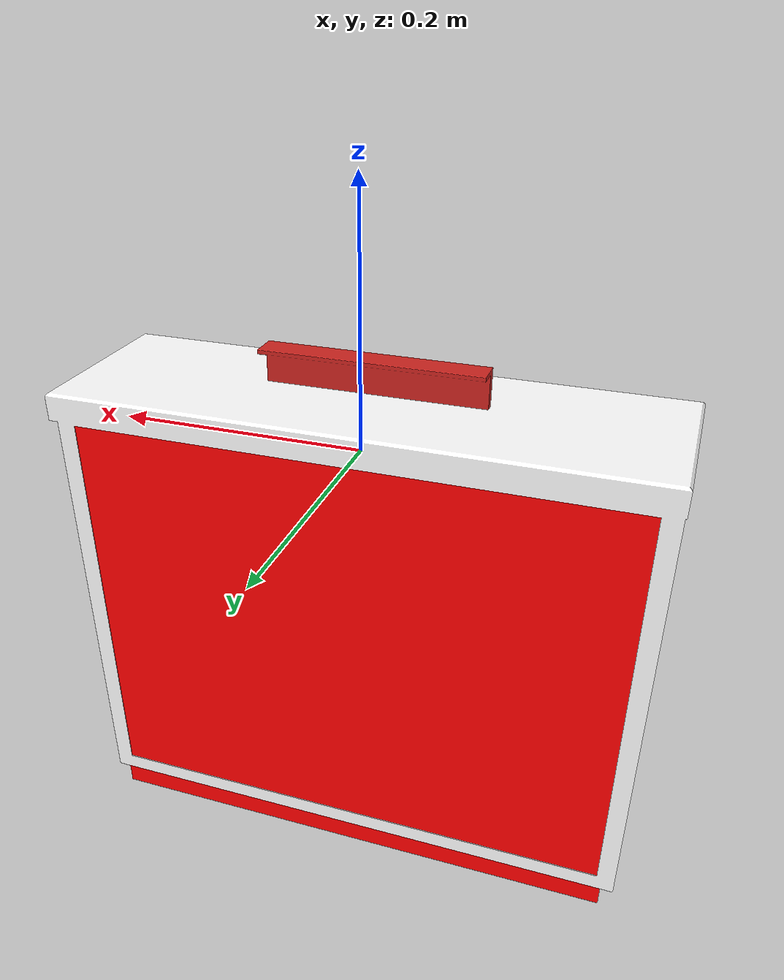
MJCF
<mujoco model="Drawer_14af4910">
  <compiler autolimits="true" boundmass="0.01" angle="radian"/>
  <default>
    <default class="/">
      <default class="__VISUAL_MJT__">
        <geom contype="0" conaffinity="0" group="0"/>
      </default>
      <default class="__STRUCTURAL_MJT__">
        <geom contype="8" conaffinity="15" group="4" friction="0.90000000000000002 0.90000000000000002 0.001" solref="0.025000000000000001 1" solimp="0.998 0.998 0.001"/>
      </default>
      <default class="__DYNAMIC_MJT__">
        <geom contype="1" conaffinity="15" group="4" friction="0.90000000000000002 0.90000000000000002 0.001" solref="0.025000000000000001 1" solimp="0.998 0.998 0.001"/>
      </default>
    </default>
  </default>
  <asset>
    <material name="material_WhiteWoodClean" class="/" specular="0.5" shininess="0.5" rgba="1 1 1 1"/>
    <mesh name="Drawer_14af4910_Mesh_01_bdbbccfb" class="/" file="Drawer_14af4910_Mesh_01_bdbbccfb/Drawer_14af4910_Mesh_01_bdbbccfb.obj" scale="1 1 1" inertia="legacy"/>
    <texture name="HammeredMetal_AlbedoTransparency_2" type="2d" file="HammeredMetal_AlbedoTransparency.png"/>
    <material name="material_HammeredMetal_AlbedoTransparency_2" class="/" texture="HammeredMetal_AlbedoTransparency_2" specular="0.5" shininess="0.5" rgba="1 0.93407709999999999 0.81617649999999997 1"/>
    <mesh name="Drawer_14af4910_handle_3_178mm_01_6deea7fa" class="/" file="Drawer_14af4910_handle_3_178mm_01_6deea7fa/Drawer_14af4910_handle_3_178mm_01_6deea7fa.obj" scale="1 1 1" inertia="legacy"/>
  </asset>
  <worldbody>
    <body name="Drawer_14af4910">
      <body name="Drawer_14af4910_Mesh_01_bdbbccfb" pos="-0 -0.0010000020265579224 0.010999917984008789" quat="1 0 0 0">
        <geom name="Drawer_14af4910_Mesh_01_bdbbccfb" class="__VISUAL_MJT__" type="mesh" material="material_WhiteWoodClean" mesh="Drawer_14af4910_Mesh_01_bdbbccfb"/>
        <joint name="Drawer_14af4910_joint" class="/" type="slide" pos="-0 0.0010000000474974513 -0.010999999940395355" axis="0 0 1" stiffness="0" range="0 0.33400000000000002" damping="0.10000000000000001" frictionloss="0"/>
        <site name="Drawer_14af4910_Mesh_01_bdbbccfb_Receptacle_0" class="/" type="box" rgba="1 0 0 1" size="0.22833728790283203 0.064363397657871246 0.1932862401008606" pos="-1.71661376953125e-05 -0.023400247097015381 -0.19279813766479492" quat="0 1 0 0"/>
        <geom name="Drawer_14af4910_Mesh_01_bdbbccfb_PrimitiveCollider_0" class="__DYNAMIC_MJT__" type="box" size="0.23976141214370728 0.074873313307762146 0.011387884616851807" rgba="0 1 0 1" pos="-0 -0.023326009511947632 0.00040102005004882812" quat="0 1 0 0"/>
        <geom name="Drawer_14af4910_Mesh_01_bdbbccfb_PrimitiveCollider_1" class="__DYNAMIC_MJT__" type="box" size="0.23976141214370728 0.070320680737495422 0.007381439208984375" rgba="0 1 0 1" pos="-0 -0.027150213718414307 -0.37086224555969238" quat="0 1 0 0"/>
        <geom name="Drawer_14af4910_Mesh_01_bdbbccfb_PrimitiveCollider_2" class="__DYNAMIC_MJT__" type="box" size="0.19288793206214905 0.069621071219444275 0.0073814410716295242" rgba="0 1 0 1" pos="-0.2313377857208252 -0.026450604200363159 -0.18537354469299316" quat="0 0.70710678118654757 0 0.70710678118654757"/>
        <geom name="Drawer_14af4910_Mesh_01_bdbbccfb_PrimitiveCollider_3" class="__DYNAMIC_MJT__" type="box" size="0.19288802146911621 0.069621071219444275 0.0073814443312585354" rgba="0 1 0 1" pos="0.23086214065551758 -0.026450604200363159 -0.18537330627441406" quat="0 0.70710678118654757 0 0.70710678118654757"/>
        <geom name="Drawer_14af4910_Mesh_01_bdbbccfb_PrimitiveCollider_4" class="__DYNAMIC_MJT__" type="box" size="0.19288797676563263 0.23735302686691284 0.0050300620496273041" rgba="0 1 0 1" pos="-0.00072526931762695312 -0.092489138245582581 -0.18537330627441406" quat="-0.49999994039535345 0.49999999999999822 0.500000059604643 0.49999999999999822"/>
        <body name="Drawer_14af4910_handle_3_178mm_01_6deea7fa" pos="-0 -0.03399999812245369 0.019999898970127106" quat="1 0 0 0">
          <geom name="Drawer_14af4910_handle_3_178mm_01_6deea7fa" class="__VISUAL_MJT__" type="mesh" material="material_HammeredMetal_AlbedoTransparency_2" mesh="Drawer_14af4910_handle_3_178mm_01_6deea7fa"/>
          <geom name="Drawer_14af4910_handle_3_178mm_01_6deea7fa_PrimitiveCollider_0" class="__DYNAMIC_MJT__" type="box" size="0.088752083480358124 0.0035549115855246782 0.016431529074907303" rgba="0 1 0 1" pos="-0 0 0.016290187835693359" quat="0 1 0 0"/>
          <geom name="Drawer_14af4910_handle_3_178mm_01_6deea7fa_PrimitiveCollider_1" class="__DYNAMIC_MJT__" type="box" size="0.088752083480358124 0.0077598136849701405 0.0019227256998419762" rgba="0 1 0 1" pos="-0 0.011284902691841125 0.030798912048339844" quat="0 1 0 0"/>
        </body>
      </body>
    </body>
  </worldbody>
  <contact>
    <exclude name="//unnamed_contact_0" body1="Drawer_14af4910_Mesh_01_bdbbccfb" body2="Drawer_14af4910_handle_3_178mm_01_6deea7fa"/>
  </contact>
</mujoco>
